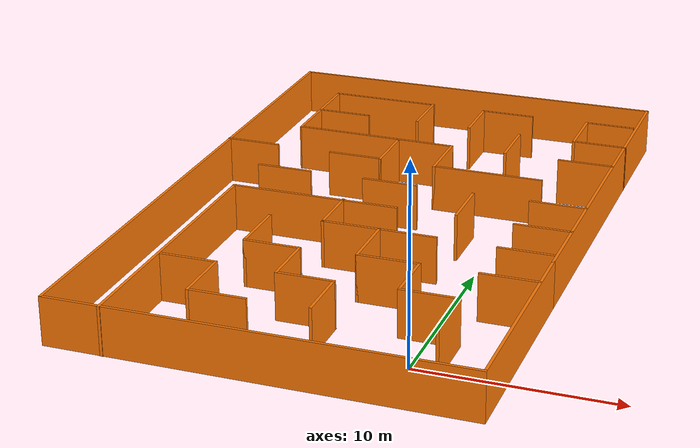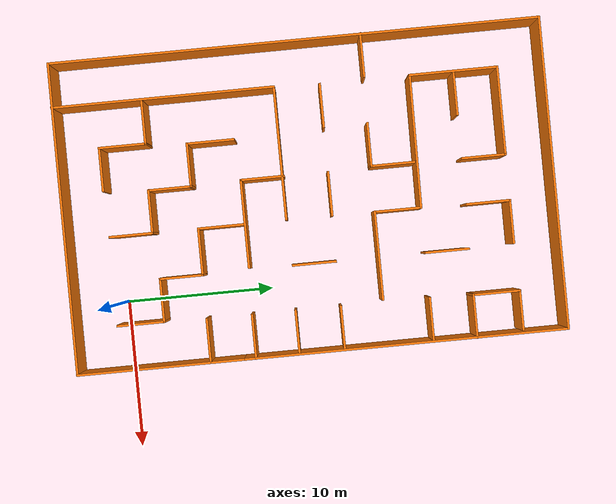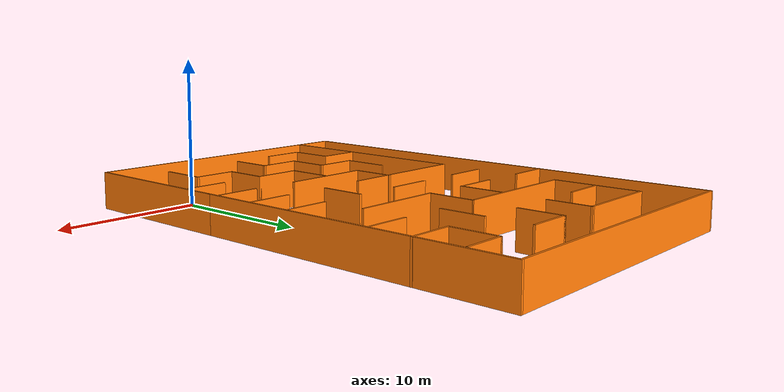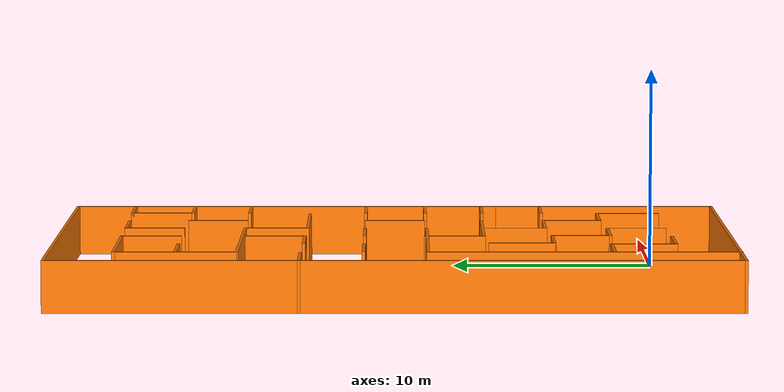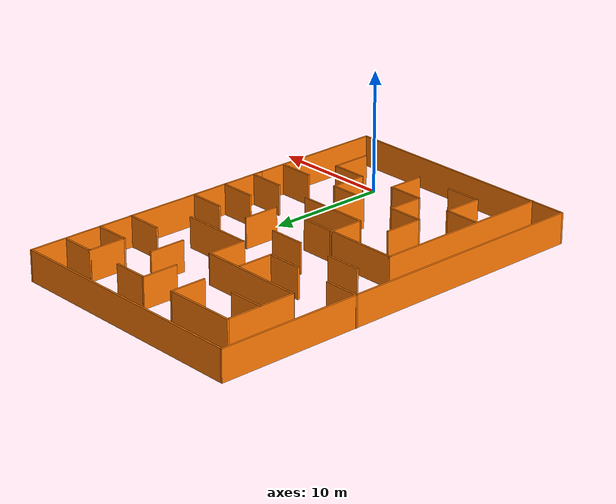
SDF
<?xml version='1.0'?>
<sdf version='1.7'>
  <model name='Labyrinth'>
    <pose>-5.94116 12.9907 0 0 -0 0</pose>
    <link name='Wall_0'>
      <collision name='Wall_0_Collision'>
        <geometry>
          <box>
            <size>21 0.15 2.5</size>
          </box>
        </geometry>
        <pose>0 0 1.25 0 -0 0</pose>
      </collision>
      <visual name='Wall_0_Visual'>
        <pose>0 0 1.25 0 -0 0</pose>
        <geometry>
          <box>
            <size>21 0.15 2.5</size>
          </box>
        </geometry>
        <material>
          <script>
            <uri>file://media/materials/scripts/gazebo.material</uri>
            <name>Gazebo/Grey</name>
          </script>
          <ambient>0.996078 0.47451 0.0196078 1</ambient>
        </material>
        <meta>
          <layer>0</layer>
        </meta>
      </visual>
      <pose>0.001674 16.4369 0 0 -0 0</pose>
    </link>
    <link name='Wall_1'>
      <collision name='Wall_1_Collision'>
        <geometry>
          <box>
            <size>21.75 0.15 2.5</size>
          </box>
        </geometry>
        <pose>0 0 1.25 0 -0 0</pose>
      </collision>
      <visual name='Wall_1_Visual'>
        <pose>0 0 1.25 0 -0 0</pose>
        <geometry>
          <box>
            <size>21.75 0.15 2.5</size>
          </box>
        </geometry>
        <material>
          <script>
            <uri>file://media/materials/scripts/gazebo.material</uri>
            <name>Gazebo/Grey</name>
          </script>
          <ambient>0.996078 0.47451 0.0196078 1</ambient>
        </material>
        <meta>
          <layer>0</layer>
        </meta>
      </visual>
      <pose>10.4267 5.63693 0 0 -0 -1.5708</pose>
    </link>
    <link name='Wall_10'>
      <collision name='Wall_10_Collision'>
        <geometry>
          <box>
            <size>3 0.15 2.5</size>
          </box>
        </geometry>
        <pose>0 0 1.25 0 -0 0</pose>
      </collision>
      <visual name='Wall_10_Visual'>
        <pose>0 0 1.25 0 -0 0</pose>
        <geometry>
          <box>
            <size>3 0.15 2.5</size>
          </box>
        </geometry>
        <material>
          <script>
            <uri>file://media/materials/scripts/gazebo.material</uri>
            <name>Gazebo/Grey</name>
          </script>
          <ambient>0.996078 0.47451 0.0196078 1</ambient>
        </material>
        <meta>
          <layer>0</layer>
        </meta>
      </visual>
      <pose>-1.52817 11.9315 0 0 -0 1.5708</pose>
    </link>
    <link name='Wall_11'>
      <collision name='Wall_11_Collision'>
        <geometry>
          <box>
            <size>6 0.15 2.5</size>
          </box>
        </geometry>
        <pose>0 0 1.25 0 -0 0</pose>
      </collision>
      <visual name='Wall_11_Visual'>
        <pose>0 0 1.25 0 -0 0</pose>
        <geometry>
          <box>
            <size>6 0.15 2.5</size>
          </box>
        </geometry>
        <material>
          <script>
            <uri>file://media/materials/scripts/gazebo.material</uri>
            <name>Gazebo/Grey</name>
          </script>
          <ambient>0.996078 0.47451 0.0196078 1</ambient>
        </material>
        <meta>
          <layer>0</layer>
        </meta>
      </visual>
      <pose>-4.45317 13.3565 0 0 -0 3.14159</pose>
    </link>
    <link name='Wall_12'>
      <collision name='Wall_12_Collision'>
        <geometry>
          <box>
            <size>6 0.15 2.5</size>
          </box>
        </geometry>
        <pose>0 0 1.25 0 -0 0</pose>
      </collision>
      <visual name='Wall_12_Visual'>
        <pose>0 0 1.25 0 -0 0</pose>
        <geometry>
          <box>
            <size>6 0.15 2.5</size>
          </box>
        </geometry>
        <material>
          <script>
            <uri>file://media/materials/scripts/gazebo.material</uri>
            <name>Gazebo/Grey</name>
          </script>
          <ambient>0.996078 0.47451 0.0196078 1</ambient>
        </material>
        <meta>
          <layer>0</layer>
        </meta>
      </visual>
      <pose>-7.37817 10.4315 0 0 -0 -1.5708</pose>
    </link>
    <link name='Wall_13'>
      <collision name='Wall_13_Collision'>
        <geometry>
          <box>
            <size>9 0.15 2.5</size>
          </box>
        </geometry>
        <pose>0 0 1.25 0 -0 0</pose>
      </collision>
      <visual name='Wall_13_Visual'>
        <pose>0 0 1.25 0 -0 0</pose>
        <geometry>
          <box>
            <size>9 0.15 2.5</size>
          </box>
        </geometry>
        <material>
          <script>
            <uri>file://media/materials/scripts/gazebo.material</uri>
            <name>Gazebo/Grey</name>
          </script>
          <ambient>0.996078 0.47451 0.0196078 1</ambient>
        </material>
        <meta>
          <layer>0</layer>
        </meta>
      </visual>
      <pose>-2.95317 7.46602 0 0 -0 -0.009142</pose>
    </link>
    <link name='Wall_16'>
      <collision name='Wall_16_Collision'>
        <geometry>
          <box>
            <size>3.25 0.15 2.5</size>
          </box>
        </geometry>
        <pose>0 0 1.25 0 -0 0</pose>
      </collision>
      <visual name='Wall_16_Visual'>
        <pose>0 0 1.25 0 -0 0</pose>
        <geometry>
          <box>
            <size>3.25 0.15 2.5</size>
          </box>
        </geometry>
        <material>
          <script>
            <uri>file://media/materials/scripts/gazebo.material</uri>
            <name>Gazebo/Grey</name>
          </script>
          <ambient>0.996078 0.47451 0.0196078 1</ambient>
        </material>
        <meta>
          <layer>0</layer>
        </meta>
      </visual>
      <pose>1.47183 5.87557 0 0 -0 -1.5708</pose>
    </link>
    <link name='Wall_17'>
      <collision name='Wall_17_Collision'>
        <geometry>
          <box>
            <size>6 0.15 2.5</size>
          </box>
        </geometry>
        <pose>0 0 1.25 0 -0 0</pose>
      </collision>
      <visual name='Wall_17_Visual'>
        <pose>0 0 1.25 0 -0 0</pose>
        <geometry>
          <box>
            <size>6 0.15 2.5</size>
          </box>
        </geometry>
        <material>
          <script>
            <uri>file://media/materials/scripts/gazebo.material</uri>
            <name>Gazebo/Grey</name>
          </script>
          <ambient>0.996078 0.47451 0.0196078 1</ambient>
        </material>
        <meta>
          <layer>0</layer>
        </meta>
      </visual>
      <pose>4.39683 4.32557 0 0 -0 0</pose>
    </link>
    <link name='Wall_19'>
      <collision name='Wall_19_Collision'>
        <geometry>
          <box>
            <size>3 0.15 2.5</size>
          </box>
        </geometry>
        <pose>0 0 1.25 0 -0 0</pose>
      </collision>
      <visual name='Wall_19_Visual'>
        <pose>0 0 1.25 0 -0 0</pose>
        <geometry>
          <box>
            <size>3 0.15 2.5</size>
          </box>
        </geometry>
        <material>
          <script>
            <uri>file://media/materials/scripts/gazebo.material</uri>
            <name>Gazebo/Grey</name>
          </script>
          <ambient>0.996078 0.47451 0.0196078 1</ambient>
        </material>
        <meta>
          <layer>0</layer>
        </meta>
      </visual>
      <pose>9.02168 10.3447 0 0 -0 3.14159</pose>
    </link>
    <link name='Wall_2'>
      <collision name='Wall_2_Collision'>
        <geometry>
          <box>
            <size>11.4 0.15 2.5</size>
          </box>
        </geometry>
        <pose>0 0 1.25 0 -0 0</pose>
      </collision>
      <visual name='Wall_2_Visual'>
        <pose>0 0 1.25 0 -0 0</pose>
        <geometry>
          <box>
            <size>11.4 0.15 2.5</size>
          </box>
        </geometry>
        <material>
          <script>
            <uri>file://media/materials/scripts/gazebo.material</uri>
            <name>Gazebo/Grey</name>
          </script>
          <ambient>0.996078 0.47451 0.0196078 1</ambient>
        </material>
        <meta>
          <layer>0</layer>
        </meta>
      </visual>
      <pose>10.4267 -10.7881 0 0 -0 -1.5708</pose>
    </link>
    <link name='Wall_20'>
      <collision name='Wall_20_Collision'>
        <geometry>
          <box>
            <size>3.25 0.15 2.5</size>
          </box>
        </geometry>
        <pose>0 0 1.25 0 -0 0</pose>
      </collision>
      <visual name='Wall_20_Visual'>
        <pose>0 0 1.25 0 -0 0</pose>
        <geometry>
          <box>
            <size>3.25 0.15 2.5</size>
          </box>
        </geometry>
        <material>
          <script>
            <uri>file://media/materials/scripts/gazebo.material</uri>
            <name>Gazebo/Grey</name>
          </script>
          <ambient>0.996078 0.47451 0.0196078 1</ambient>
        </material>
        <meta>
          <layer>0</layer>
        </meta>
      </visual>
      <pose>7.59668 11.8947 0 0 -0 1.5708</pose>
    </link>
    <link name='Wall_21'>
      <collision name='Wall_21_Collision'>
        <geometry>
          <box>
            <size>2.75 0.15 2.5</size>
          </box>
        </geometry>
        <pose>0 0 1.25 0 -0 0</pose>
      </collision>
      <visual name='Wall_21_Visual'>
        <pose>0 0 1.25 0 -0 0</pose>
        <geometry>
          <box>
            <size>2.75 0.15 2.5</size>
          </box>
        </geometry>
        <material>
          <script>
            <uri>file://media/materials/scripts/gazebo.material</uri>
            <name>Gazebo/Grey</name>
          </script>
          <ambient>0.996078 0.47451 0.0196078 1</ambient>
        </material>
        <meta>
          <layer>0</layer>
        </meta>
      </visual>
      <pose>8.89668 13.4447 0 0 -0 0</pose>
    </link>
    <link name='Wall_23'>
      <collision name='Wall_23_Collision'>
        <geometry>
          <box>
            <size>3 0.15 2.5</size>
          </box>
        </geometry>
        <pose>0 0 1.25 0 -0 0</pose>
      </collision>
      <visual name='Wall_23_Visual'>
        <pose>0 0 1.25 0 -0 0</pose>
        <geometry>
          <box>
            <size>3 0.15 2.5</size>
          </box>
        </geometry>
        <material>
          <script>
            <uri>file://media/materials/scripts/gazebo.material</uri>
            <name>Gazebo/Grey</name>
          </script>
          <ambient>0.996078 0.47451 0.0196078 1</ambient>
        </material>
        <meta>
          <layer>0</layer>
        </meta>
      </visual>
      <pose>1.54646 11.9315 0 0 -0 1.5708</pose>
    </link>
    <link name='Wall_24'>
      <collision name='Wall_24_Collision'>
        <geometry>
          <box>
            <size>3 0.15 2.5</size>
          </box>
        </geometry>
        <pose>0 0 1.25 0 -0 0</pose>
      </collision>
      <visual name='Wall_24_Visual'>
        <pose>0 0 1.25 0 -0 0</pose>
        <geometry>
          <box>
            <size>3 0.15 2.5</size>
          </box>
        </geometry>
        <material>
          <script>
            <uri>file://media/materials/scripts/gazebo.material</uri>
            <name>Gazebo/Grey</name>
          </script>
          <ambient>0.996078 0.47451 0.0196078 1</ambient>
        </material>
        <meta>
          <layer>0</layer>
        </meta>
      </visual>
      <pose>2.97146 13.3565 0 0 -0 0</pose>
    </link>
    <link name='Wall_26'>
      <collision name='Wall_26_Collision'>
        <geometry>
          <box>
            <size>3 0.15 2.5</size>
          </box>
        </geometry>
        <pose>0 0 1.25 0 -0 0</pose>
      </collision>
      <visual name='Wall_26_Visual'>
        <pose>0 0 1.25 0 -0 0</pose>
        <geometry>
          <box>
            <size>3 0.15 2.5</size>
          </box>
        </geometry>
        <material>
          <script>
            <uri>file://media/materials/scripts/gazebo.material</uri>
            <name>Gazebo/Grey</name>
          </script>
          <ambient>0.996078 0.47451 0.0196078 1</ambient>
        </material>
        <meta>
          <layer>0</layer>
        </meta>
      </visual>
      <pose>-5.90642 10.4256 0 0 -0 3.14159</pose>
    </link>
    <link name='Wall_28'>
      <collision name='Wall_28_Collision'>
        <geometry>
          <box>
            <size>3 0.15 2.5</size>
          </box>
        </geometry>
        <pose>0 0 1.25 0 -0 0</pose>
      </collision>
      <visual name='Wall_28_Visual'>
        <pose>0 0 1.25 0 -0 0</pose>
        <geometry>
          <box>
            <size>3 0.15 2.5</size>
          </box>
        </geometry>
        <material>
          <script>
            <uri>file://media/materials/scripts/gazebo.material</uri>
            <name>Gazebo/Grey</name>
          </script>
          <ambient>0.996078 0.47451 0.0196078 1</ambient>
        </material>
        <meta>
          <layer>0</layer>
        </meta>
      </visual>
      <pose>-3.01597 4.39769 0 0 -0 0</pose>
    </link>
    <link name='Wall_29'>
      <collision name='Wall_29_Collision'>
        <geometry>
          <box>
            <size>3 0.15 2.5</size>
          </box>
        </geometry>
        <pose>0 0 1.25 0 -0 0</pose>
      </collision>
      <visual name='Wall_29_Visual'>
        <pose>0 0 1.25 0 -0 0</pose>
        <geometry>
          <box>
            <size>3 0.15 2.5</size>
          </box>
        </geometry>
        <material>
          <script>
            <uri>file://media/materials/scripts/gazebo.material</uri>
            <name>Gazebo/Grey</name>
          </script>
          <ambient>0.996078 0.47451 0.0196078 1</ambient>
        </material>
        <meta>
          <layer>0</layer>
        </meta>
      </visual>
      <pose>-1.59097 5.82269 0 0 -0 1.5708</pose>
    </link>
    <link name='Wall_3'>
      <collision name='Wall_3_Collision'>
        <geometry>
          <box>
            <size>21 0.15 2.5</size>
          </box>
        </geometry>
        <pose>0 0 1.25 0 -0 0</pose>
      </collision>
      <visual name='Wall_3_Visual'>
        <pose>0 0 1.25 0 -0 0</pose>
        <geometry>
          <box>
            <size>21 0.15 2.5</size>
          </box>
        </geometry>
        <material>
          <script>
            <uri>file://media/materials/scripts/gazebo.material</uri>
            <name>Gazebo/Grey</name>
          </script>
          <ambient>0.996078 0.47451 0.0196078 1</ambient>
        </material>
        <meta>
          <layer>0</layer>
        </meta>
      </visual>
      <pose>0.001674 -16.4131 0 0 -0 3.14159</pose>
    </link>
    <link name='Wall_31'>
      <collision name='Wall_31_Collision'>
        <geometry>
          <box>
            <size>3 0.15 2.5</size>
          </box>
        </geometry>
        <pose>0 0 1.25 0 -0 0</pose>
      </collision>
      <visual name='Wall_31_Visual'>
        <pose>0 0 1.25 0 -0 0</pose>
        <geometry>
          <box>
            <size>3 0.15 2.5</size>
          </box>
        </geometry>
        <material>
          <script>
            <uri>file://media/materials/scripts/gazebo.material</uri>
            <name>Gazebo/Grey</name>
          </script>
          <ambient>0.996078 0.47451 0.0196078 1</ambient>
        </material>
        <meta>
          <layer>0</layer>
        </meta>
      </visual>
      <pose>4.49971 8.89731 0 0 -0 1.5708</pose>
    </link>
    <link name='Wall_33'>
      <collision name='Wall_33_Collision'>
        <geometry>
          <box>
            <size>3 0.15 2.5</size>
          </box>
        </geometry>
        <pose>0 0 1.25 0 -0 0</pose>
      </collision>
      <visual name='Wall_33_Visual'>
        <pose>0 0 1.25 0 -0 0</pose>
        <geometry>
          <box>
            <size>3 0.15 2.5</size>
          </box>
        </geometry>
        <material>
          <script>
            <uri>file://media/materials/scripts/gazebo.material</uri>
            <name>Gazebo/Grey</name>
          </script>
          <ambient>0.996078 0.47451 0.0196078 1</ambient>
        </material>
        <meta>
          <layer>0</layer>
        </meta>
      </visual>
      <pose>8.95888 7.43186 0 0 -0 0</pose>
    </link>
    <link name='Wall_35'>
      <collision name='Wall_35_Collision'>
        <geometry>
          <box>
            <size>3 0.15 2.5</size>
          </box>
        </geometry>
        <pose>0 0 1.25 0 -0 0</pose>
      </collision>
      <visual name='Wall_35_Visual'>
        <pose>0 0 1.25 0 -0 0</pose>
        <geometry>
          <box>
            <size>3 0.15 2.5</size>
          </box>
        </geometry>
        <material>
          <script>
            <uri>file://media/materials/scripts/gazebo.material</uri>
            <name>Gazebo/Grey</name>
          </script>
          <ambient>0.996078 0.47451 0.0196078 1</ambient>
        </material>
        <meta>
          <layer>0</layer>
        </meta>
      </visual>
      <pose>8.95888 1.48489 0 0 -0 0</pose>
    </link>
    <link name='Wall_37'>
      <collision name='Wall_37_Collision'>
        <geometry>
          <box>
            <size>15 0.15 2.5</size>
          </box>
        </geometry>
        <pose>0 0 1.25 0 -0 0</pose>
      </collision>
      <visual name='Wall_37_Visual'>
        <pose>0 0 1.25 0 -0 0</pose>
        <geometry>
          <box>
            <size>15 0.15 2.5</size>
          </box>
        </geometry>
        <material>
          <script>
            <uri>file://media/materials/scripts/gazebo.material</uri>
            <name>Gazebo/Grey</name>
          </script>
          <ambient>0.996078 0.47451 0.0196078 1</ambient>
        </material>
        <meta>
          <layer>0</layer>
        </meta>
      </visual>
      <pose>-7.47514 -9.01193 0 0 -0 1.5708</pose>
    </link>
    <link name='Wall_4'>
      <collision name='Wall_4_Collision'>
        <geometry>
          <box>
            <size>33 0.15 2.5</size>
          </box>
        </geometry>
        <pose>0 0 1.25 0 -0 0</pose>
      </collision>
      <visual name='Wall_4_Visual'>
        <pose>0 0 1.25 0 -0 0</pose>
        <geometry>
          <box>
            <size>33 0.15 2.5</size>
          </box>
        </geometry>
        <material>
          <script>
            <uri>file://media/materials/scripts/gazebo.material</uri>
            <name>Gazebo/Grey</name>
          </script>
          <ambient>0.996078 0.47451 0.0196078 1</ambient>
        </material>
        <meta>
          <layer>0</layer>
        </meta>
      </visual>
      <pose>-10.4233 0.011934 0 0 -0 1.5708</pose>
    </link>
    <link name='Wall_40'>
      <collision name='Wall_40_Collision'>
        <geometry>
          <box>
            <size>9 0.15 2.5</size>
          </box>
        </geometry>
        <pose>0 0 1.25 0 -0 0</pose>
      </collision>
      <visual name='Wall_40_Visual'>
        <pose>0 0 1.25 0 -0 0</pose>
        <geometry>
          <box>
            <size>9 0.15 2.5</size>
          </box>
        </geometry>
        <material>
          <script>
            <uri>file://media/materials/scripts/gazebo.material</uri>
            <name>Gazebo/Grey</name>
          </script>
          <ambient>0.996078 0.47451 0.0196078 1</ambient>
        </material>
        <meta>
          <layer>0</layer>
        </meta>
      </visual>
      <pose>-3.05014 -1.58693 0 0 -0 0</pose>
    </link>
    <link name='Wall_44'>
      <collision name='Wall_44_Collision'>
        <geometry>
          <box>
            <size>3 0.15 2.5</size>
          </box>
        </geometry>
        <pose>0 0 1.25 0 -0 0</pose>
      </collision>
      <visual name='Wall_44_Visual'>
        <pose>0 0 1.25 0 -0 0</pose>
        <geometry>
          <box>
            <size>3 0.15 2.5</size>
          </box>
        </geometry>
        <material>
          <script>
            <uri>file://media/materials/scripts/gazebo.material</uri>
            <name>Gazebo/Grey</name>
          </script>
          <ambient>0.996078 0.47451 0.0196078 1</ambient>
        </material>
        <meta>
          <layer>0</layer>
        </meta>
      </visual>
      <pose>-1.48771 -2.93383 0 0 -0 -1.5708</pose>
    </link>
    <link name='Wall_45'>
      <collision name='Wall_45_Collision'>
        <geometry>
          <box>
            <size>6 0.15 2.5</size>
          </box>
        </geometry>
        <pose>0 0 1.25 0 -0 0</pose>
      </collision>
      <visual name='Wall_45_Visual'>
        <pose>0 0 1.25 0 -0 0</pose>
        <geometry>
          <box>
            <size>6 0.15 2.5</size>
          </box>
        </geometry>
        <material>
          <script>
            <uri>file://media/materials/scripts/gazebo.material</uri>
            <name>Gazebo/Grey</name>
          </script>
          <ambient>0.996078 0.47451 0.0196078 1</ambient>
        </material>
        <meta>
          <layer>0</layer>
        </meta>
      </visual>
      <pose>1.43729 -4.35883 0 0 -0 0</pose>
    </link>
    <link name='Wall_47'>
      <collision name='Wall_47_Collision'>
        <geometry>
          <box>
            <size>3.25 0.15 2.5</size>
          </box>
        </geometry>
        <pose>0 0 1.25 0 -0 0</pose>
      </collision>
      <visual name='Wall_47_Visual'>
        <pose>0 0 1.25 0 -0 0</pose>
        <geometry>
          <box>
            <size>3.25 0.15 2.5</size>
          </box>
        </geometry>
        <material>
          <script>
            <uri>file://media/materials/scripts/gazebo.material</uri>
            <name>Gazebo/Grey</name>
          </script>
          <ambient>0.996078 0.47451 0.0196078 1</ambient>
        </material>
        <meta>
          <layer>0</layer>
        </meta>
      </visual>
      <pose>1.46555 -5.93117 0 0 -0 -1.5708</pose>
    </link>
    <link name='Wall_48'>
      <collision name='Wall_48_Collision'>
        <geometry>
          <box>
            <size>3.25 0.15 2.5</size>
          </box>
        </geometry>
        <pose>0 0 1.25 0 -0 0</pose>
      </collision>
      <visual name='Wall_48_Visual'>
        <pose>0 0 1.25 0 -0 0</pose>
        <geometry>
          <box>
            <size>3.25 0.15 2.5</size>
          </box>
        </geometry>
        <material>
          <script>
            <uri>file://media/materials/scripts/gazebo.material</uri>
            <name>Gazebo/Grey</name>
          </script>
          <ambient>0.996078 0.47451 0.0196078 1</ambient>
        </material>
        <meta>
          <layer>0</layer>
        </meta>
      </visual>
      <pose>3.01555 -7.48117 0 0 -0 0</pose>
    </link>
    <link name='Wall_49'>
      <collision name='Wall_49_Collision'>
        <geometry>
          <box>
            <size>3 0.15 2.5</size>
          </box>
        </geometry>
        <pose>0 0 1.25 0 -0 0</pose>
      </collision>
      <visual name='Wall_49_Visual'>
        <pose>0 0 1.25 0 -0 0</pose>
        <geometry>
          <box>
            <size>3 0.15 2.5</size>
          </box>
        </geometry>
        <material>
          <script>
            <uri>file://media/materials/scripts/gazebo.material</uri>
            <name>Gazebo/Grey</name>
          </script>
          <ambient>0.996078 0.47451 0.0196078 1</ambient>
        </material>
        <meta>
          <layer>0</layer>
        </meta>
      </visual>
      <pose>4.56555 -8.90617 0 0 -0 -1.5708</pose>
    </link>
    <link name='Wall_50'>
      <collision name='Wall_50_Collision'>
        <geometry>
          <box>
            <size>3 0.15 2.5</size>
          </box>
        </geometry>
        <pose>0 0 1.25 0 -0 0</pose>
      </collision>
      <visual name='Wall_50_Visual'>
        <pose>0 0 1.25 0 -0 0</pose>
        <geometry>
          <box>
            <size>3 0.15 2.5</size>
          </box>
        </geometry>
        <material>
          <script>
            <uri>file://media/materials/scripts/gazebo.material</uri>
            <name>Gazebo/Grey</name>
          </script>
          <ambient>0.996078 0.47451 0.0196078 1</ambient>
        </material>
        <meta>
          <layer>0</layer>
        </meta>
      </visual>
      <pose>5.99055 -10.3312 0 0 -0 0</pose>
    </link>
    <link name='Wall_51'>
      <collision name='Wall_51_Collision'>
        <geometry>
          <box>
            <size>3.25 0.15 2.5</size>
          </box>
        </geometry>
        <pose>0 0 1.25 0 -0 0</pose>
      </collision>
      <visual name='Wall_51_Visual'>
        <pose>0 0 1.25 0 -0 0</pose>
        <geometry>
          <box>
            <size>3.25 0.15 2.5</size>
          </box>
        </geometry>
        <material>
          <script>
            <uri>file://media/materials/scripts/gazebo.material</uri>
            <name>Gazebo/Grey</name>
          </script>
          <ambient>0.996078 0.47451 0.0196078 1</ambient>
        </material>
        <meta>
          <layer>0</layer>
        </meta>
      </visual>
      <pose>7.41555 -11.8812 0 0 -0 -1.5708</pose>
    </link>
    <link name='Wall_53'>
      <collision name='Wall_53_Collision'>
        <geometry>
          <box>
            <size>3 0.15 2.5</size>
          </box>
        </geometry>
        <pose>0 0 1.25 0 -0 0</pose>
      </collision>
      <visual name='Wall_53_Visual'>
        <pose>0 0 1.25 0 -0 0</pose>
        <geometry>
          <box>
            <size>3 0.15 2.5</size>
          </box>
        </geometry>
        <material>
          <script>
            <uri>file://media/materials/scripts/gazebo.material</uri>
            <name>Gazebo/Grey</name>
          </script>
          <ambient>0.996078 0.47451 0.0196078 1</ambient>
        </material>
        <meta>
          <layer>0</layer>
        </meta>
      </visual>
      <pose>1.46555 -11.9778 0 0 -0 1.5708</pose>
    </link>
    <link name='Wall_54'>
      <collision name='Wall_54_Collision'>
        <geometry>
          <box>
            <size>3 0.15 2.5</size>
          </box>
        </geometry>
        <pose>0 0 1.25 0 -0 0</pose>
      </collision>
      <visual name='Wall_54_Visual'>
        <pose>0 0 1.25 0 -0 0</pose>
        <geometry>
          <box>
            <size>3 0.15 2.5</size>
          </box>
        </geometry>
        <material>
          <script>
            <uri>file://media/materials/scripts/gazebo.material</uri>
            <name>Gazebo/Grey</name>
          </script>
          <ambient>0.996078 0.47451 0.0196078 1</ambient>
        </material>
        <meta>
          <layer>0</layer>
        </meta>
      </visual>
      <pose>0.040546 -10.5528 0 0 -0 3.14159</pose>
    </link>
    <link name='Wall_55'>
      <collision name='Wall_55_Collision'>
        <geometry>
          <box>
            <size>3 0.15 2.5</size>
          </box>
        </geometry>
        <pose>0 0 1.25 0 -0 0</pose>
      </collision>
      <visual name='Wall_55_Visual'>
        <pose>0 0 1.25 0 -0 0</pose>
        <geometry>
          <box>
            <size>3 0.15 2.5</size>
          </box>
        </geometry>
        <material>
          <script>
            <uri>file://media/materials/scripts/gazebo.material</uri>
            <name>Gazebo/Grey</name>
          </script>
          <ambient>0.996078 0.47451 0.0196078 1</ambient>
        </material>
        <meta>
          <layer>0</layer>
        </meta>
      </visual>
      <pose>-1.38445 -9.12777 0 0 -0 1.5708</pose>
    </link>
    <link name='Wall_56'>
      <collision name='Wall_56_Collision'>
        <geometry>
          <box>
            <size>3 0.15 2.5</size>
          </box>
        </geometry>
        <pose>0 0 1.25 0 -0 0</pose>
      </collision>
      <visual name='Wall_56_Visual'>
        <pose>0 0 1.25 0 -0 0</pose>
        <geometry>
          <box>
            <size>3 0.15 2.5</size>
          </box>
        </geometry>
        <material>
          <script>
            <uri>file://media/materials/scripts/gazebo.material</uri>
            <name>Gazebo/Grey</name>
          </script>
          <ambient>0.996078 0.47451 0.0196078 1</ambient>
        </material>
        <meta>
          <layer>0</layer>
        </meta>
      </visual>
      <pose>-2.80945 -7.70277 0 0 -0 3.14159</pose>
    </link>
    <link name='Wall_57'>
      <collision name='Wall_57_Collision'>
        <geometry>
          <box>
            <size>3.25 0.15 2.5</size>
          </box>
        </geometry>
        <pose>0 0 1.25 0 -0 0</pose>
      </collision>
      <visual name='Wall_57_Visual'>
        <pose>0 0 1.25 0 -0 0</pose>
        <geometry>
          <box>
            <size>3.25 0.15 2.5</size>
          </box>
        </geometry>
        <material>
          <script>
            <uri>file://media/materials/scripts/gazebo.material</uri>
            <name>Gazebo/Grey</name>
          </script>
          <ambient>0.996078 0.47451 0.0196078 1</ambient>
        </material>
        <meta>
          <layer>0</layer>
        </meta>
      </visual>
      <pose>-4.23445 -6.15277 0 0 -0 1.5708</pose>
    </link>
    <link name='Wall_59'>
      <collision name='Wall_59_Collision'>
        <geometry>
          <box>
            <size>3 0.15 2.5</size>
          </box>
        </geometry>
        <pose>0 0 1.25 0 -0 0</pose>
      </collision>
      <visual name='Wall_59_Visual'>
        <pose>0 0 1.25 0 -0 0</pose>
        <geometry>
          <box>
            <size>3 0.15 2.5</size>
          </box>
        </geometry>
        <material>
          <script>
            <uri>file://media/materials/scripts/gazebo.material</uri>
            <name>Gazebo/Grey</name>
          </script>
          <ambient>0.996078 0.47451 0.0196078 1</ambient>
        </material>
        <meta>
          <layer>0</layer>
        </meta>
      </visual>
      <pose>-5.92877 -10.4495 0 0 -0 0</pose>
    </link>
    <link name='Wall_6'>
      <collision name='Wall_6_Collision'>
        <geometry>
          <box>
            <size>3 0.15 2.5</size>
          </box>
        </geometry>
        <pose>0 0 1.25 0 -0 0</pose>
      </collision>
      <visual name='Wall_6_Visual'>
        <pose>0 0 1.25 0 -0 0</pose>
        <geometry>
          <box>
            <size>3 0.15 2.5</size>
          </box>
        </geometry>
        <material>
          <script>
            <uri>file://media/materials/scripts/gazebo.material</uri>
            <name>Gazebo/Grey</name>
          </script>
          <ambient>0.996078 0.47451 0.0196078 1</ambient>
        </material>
        <meta>
          <layer>0</layer>
        </meta>
      </visual>
      <pose>-9.02168 4.48462 0 0 -0 0</pose>
    </link>
    <link name='Wall_60'>
      <collision name='Wall_60_Collision'>
        <geometry>
          <box>
            <size>3.25 0.15 2.5</size>
          </box>
        </geometry>
        <pose>0 0 1.25 0 -0 0</pose>
      </collision>
      <visual name='Wall_60_Visual'>
        <pose>0 0 1.25 0 -0 0</pose>
        <geometry>
          <box>
            <size>3.25 0.15 2.5</size>
          </box>
        </geometry>
        <material>
          <script>
            <uri>file://media/materials/scripts/gazebo.material</uri>
            <name>Gazebo/Grey</name>
          </script>
          <ambient>0.996078 0.47451 0.0196078 1</ambient>
        </material>
        <meta>
          <layer>0</layer>
        </meta>
      </visual>
      <pose>-4.50377 -11.9995 0 0 -0 -1.5708</pose>
    </link>
    <link name='Wall_61'>
      <collision name='Wall_61_Collision'>
        <geometry>
          <box>
            <size>3 0.15 2.5</size>
          </box>
        </geometry>
        <pose>0 0 1.25 0 -0 0</pose>
      </collision>
      <visual name='Wall_61_Visual'>
        <pose>0 0 1.25 0 -0 0</pose>
        <geometry>
          <box>
            <size>3 0.15 2.5</size>
          </box>
        </geometry>
        <material>
          <script>
            <uri>file://media/materials/scripts/gazebo.material</uri>
            <name>Gazebo/Grey</name>
          </script>
          <ambient>0.996078 0.47451 0.0196078 1</ambient>
        </material>
        <meta>
          <layer>0</layer>
        </meta>
      </visual>
      <pose>-3.07877 -13.5495 0 0 -0 0</pose>
    </link>
    <link name='Wall_63'>
      <collision name='Wall_63_Collision'>
        <geometry>
          <box>
            <size>3 0.15 2.5</size>
          </box>
        </geometry>
        <pose>0 0 1.25 0 -0 0</pose>
      </collision>
      <visual name='Wall_63_Visual'>
        <pose>0 0 1.25 0 -0 0</pose>
        <geometry>
          <box>
            <size>3 0.15 2.5</size>
          </box>
        </geometry>
        <material>
          <script>
            <uri>file://media/materials/scripts/gazebo.material</uri>
            <name>Gazebo/Grey</name>
          </script>
          <ambient>0.996078 0.47451 0.0196078 1</ambient>
        </material>
        <meta>
          <layer>0</layer>
        </meta>
      </visual>
      <pose>8.95888 -7.49625 0 0 -0 0</pose>
    </link>
    <link name='Wall_65'>
      <collision name='Wall_65_Collision'>
        <geometry>
          <box>
            <size>3 0.15 2.5</size>
          </box>
        </geometry>
        <pose>0 0 1.25 0 -0 0</pose>
      </collision>
      <visual name='Wall_65_Visual'>
        <pose>0 0 1.25 0 -0 0</pose>
        <geometry>
          <box>
            <size>3 0.15 2.5</size>
          </box>
        </geometry>
        <material>
          <script>
            <uri>file://media/materials/scripts/gazebo.material</uri>
            <name>Gazebo/Grey</name>
          </script>
          <ambient>0.996078 0.47451 0.0196078 1</ambient>
        </material>
        <meta>
          <layer>0</layer>
        </meta>
      </visual>
      <pose>8.95888 -4.46208 0 0 -0 0</pose>
    </link>
    <link name='Wall_67'>
      <collision name='Wall_67_Collision'>
        <geometry>
          <box>
            <size>3 0.15 2.5</size>
          </box>
        </geometry>
        <pose>0 0 1.25 0 -0 0</pose>
      </collision>
      <visual name='Wall_67_Visual'>
        <pose>0 0 1.25 0 -0 0</pose>
        <geometry>
          <box>
            <size>3 0.15 2.5</size>
          </box>
        </geometry>
        <material>
          <script>
            <uri>file://media/materials/scripts/gazebo.material</uri>
            <name>Gazebo/Grey</name>
          </script>
          <ambient>0.996078 0.47451 0.0196078 1</ambient>
        </material>
        <meta>
          <layer>0</layer>
        </meta>
      </visual>
      <pose>8.95888 -1.54928 0 0 -0 0</pose>
    </link>
    <link name='Wall_69'>
      <collision name='Wall_69_Collision'>
        <geometry>
          <box>
            <size>3 0.15 2.5</size>
          </box>
        </geometry>
        <pose>0 0 1.25 0 -0 0</pose>
      </collision>
      <visual name='Wall_69_Visual'>
        <pose>0 0 1.25 0 -0 0</pose>
        <geometry>
          <box>
            <size>3 0.15 2.5</size>
          </box>
        </geometry>
        <material>
          <script>
            <uri>file://media/materials/scripts/gazebo.material</uri>
            <name>Gazebo/Grey</name>
          </script>
          <ambient>0.996078 0.47451 0.0196078 1</ambient>
        </material>
        <meta>
          <layer>0</layer>
        </meta>
      </visual>
      <pose>4.49971 -0.002916 0 0 -0 1.5708</pose>
    </link>
    <link name='Wall_71'>
      <collision name='Wall_71_Collision'>
        <geometry>
          <box>
            <size>3 0.15 2.5</size>
          </box>
        </geometry>
        <pose>0 0 1.25 0 -0 0</pose>
      </collision>
      <visual name='Wall_71_Visual'>
        <pose>0 0 1.25 0 -0 0</pose>
        <geometry>
          <box>
            <size>3 0.15 2.5</size>
          </box>
        </geometry>
        <material>
          <script>
            <uri>file://media/materials/scripts/gazebo.material</uri>
            <name>Gazebo/Grey</name>
          </script>
          <ambient>0.996078 0.47451 0.0196078 1</ambient>
        </material>
        <meta>
          <layer>0</layer>
        </meta>
      </visual>
      <pose>-5.92877 1.48489 0 0 -0 0</pose>
    </link>
    <link name='Wall_73'>
      <collision name='Wall_73_Collision'>
        <geometry>
          <box>
            <size>3 0.15 2.5</size>
          </box>
        </geometry>
        <pose>0 0 1.25 0 -0 0</pose>
      </collision>
      <visual name='Wall_73_Visual'>
        <pose>0 0 1.25 0 -0 0</pose>
        <geometry>
          <box>
            <size>3 0.15 2.5</size>
          </box>
        </geometry>
        <material>
          <script>
            <uri>file://media/materials/scripts/gazebo.material</uri>
            <name>Gazebo/Grey</name>
          </script>
          <ambient>0.996078 0.47451 0.0196078 1</ambient>
        </material>
        <meta>
          <layer>0</layer>
        </meta>
      </visual>
      <pose>-0.022256 1.48489 0 0 -0 0</pose>
    </link>
    <static>1</static>
  </model>
</sdf>
